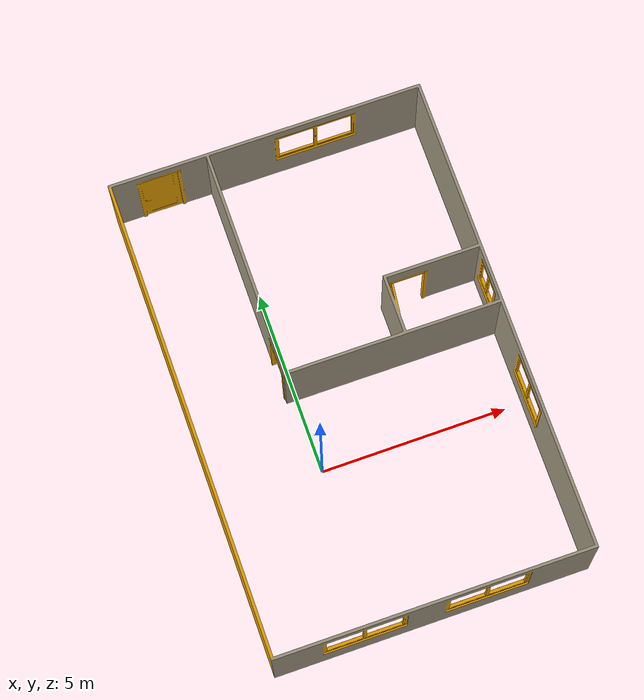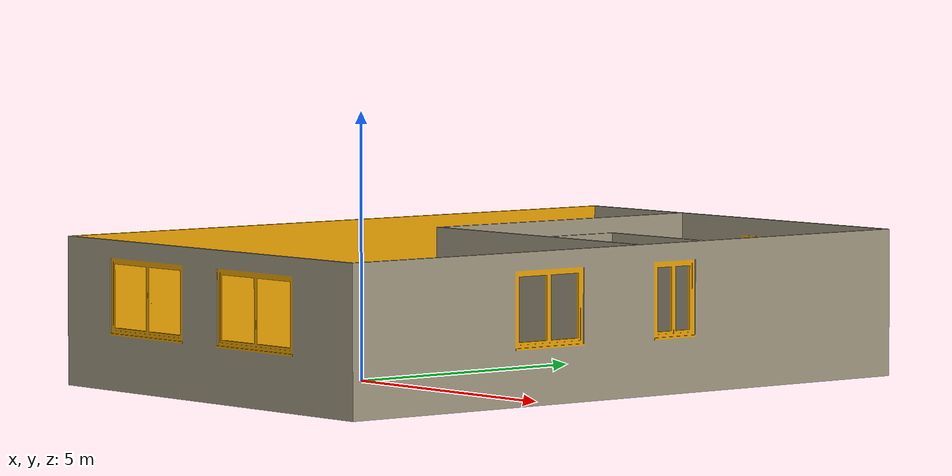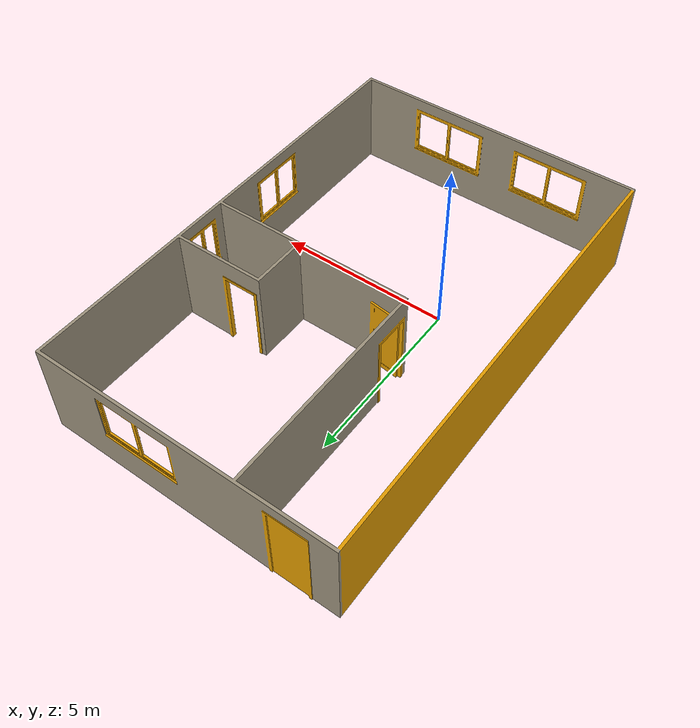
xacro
<?xml version="1.0"?>
<robot name="patrol_apartment" xmlns:xacro="http://www.ros.org/wiki/xacro">
  <link name="limo_structure_link">
    <inertial>
      <origin xyz="0 0 0" rpy="0 0 0"/>
      <mass value="1"/>
      <inertia ixx="0.16667" ixy="0" ixz="0" iyy="0.16667" iyz="0" izz="0.16667"/>
    </inertial>
    <visual>
      <origin xyz="0 0 0" rpy="0 0 0"/>
      <geometry>
        <mesh filename="package://patrol_gazebo/meshes/Structure.dae"/>
      </geometry>
    </visual>
    <collision>
      <origin xyz="0 0 0" rpy="0 0 0"/>
      <geometry>
        <mesh filename="package://patrol_gazebo/meshes/Structure.stl"/>
      </geometry>
    </collision>
  </link>
  <gazebo>
    <static>true</static>
  </gazebo>
</robot>
